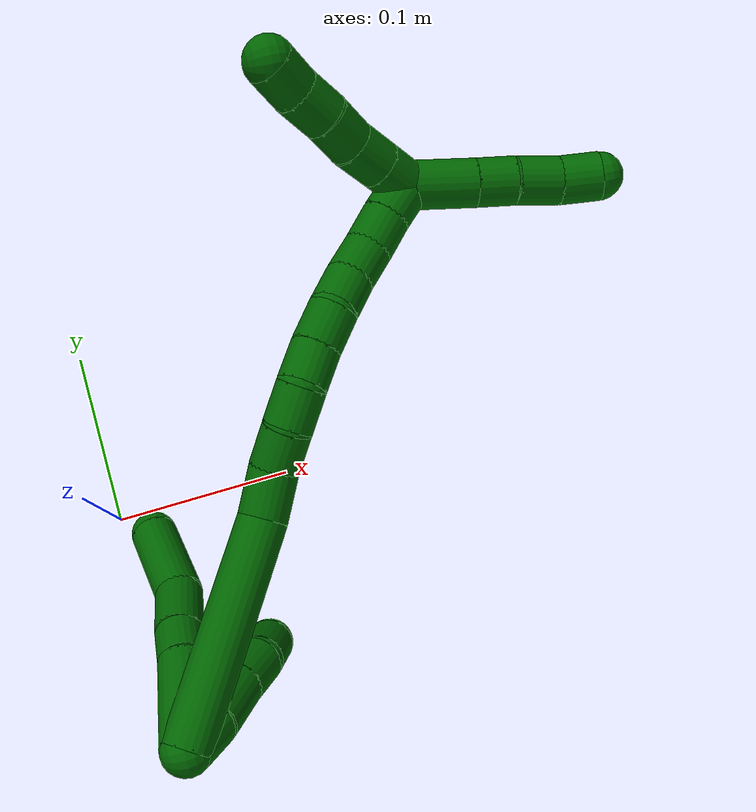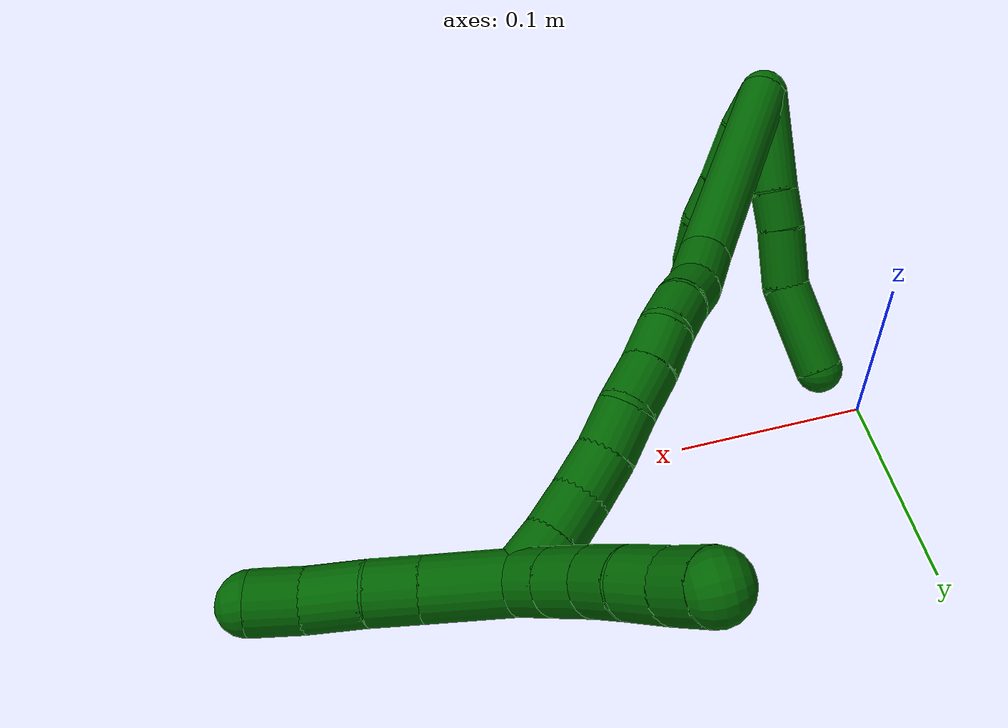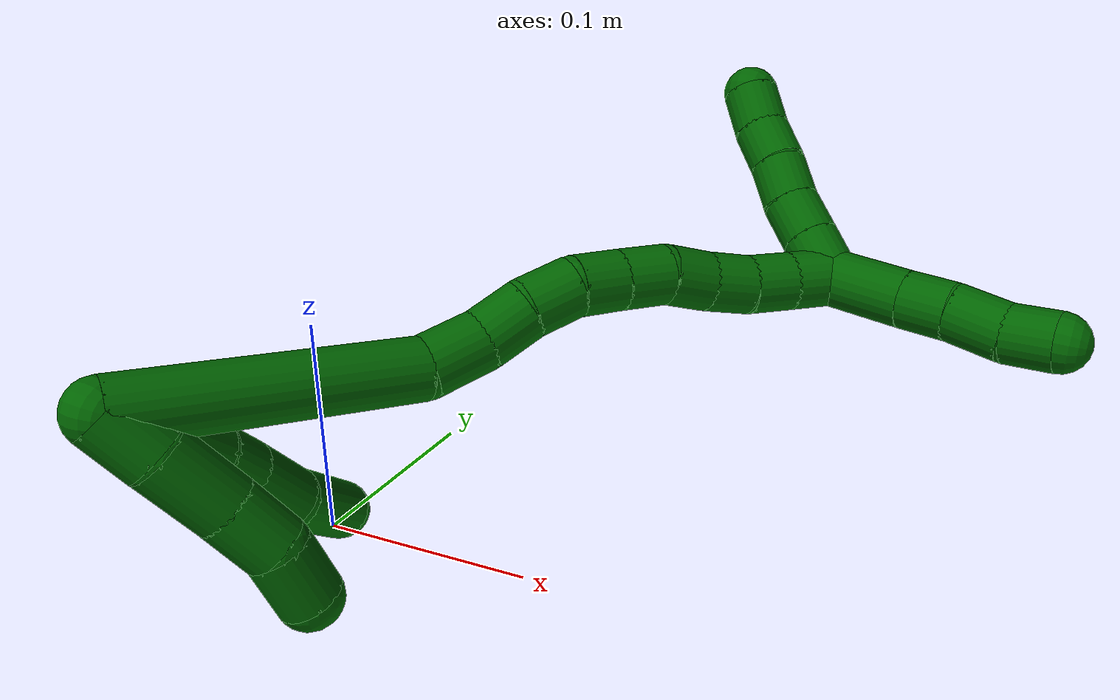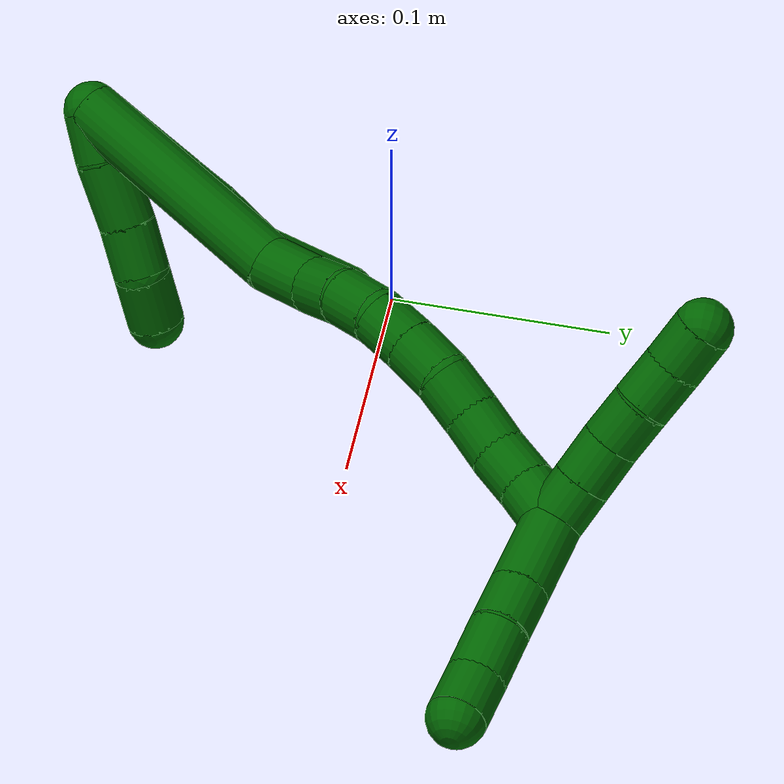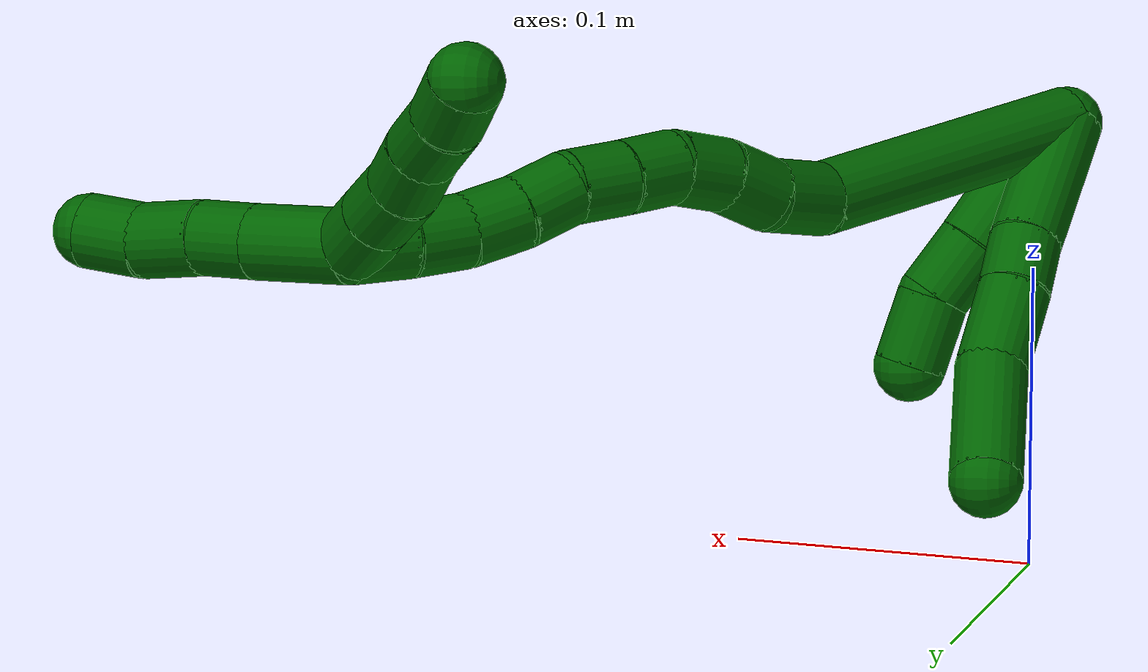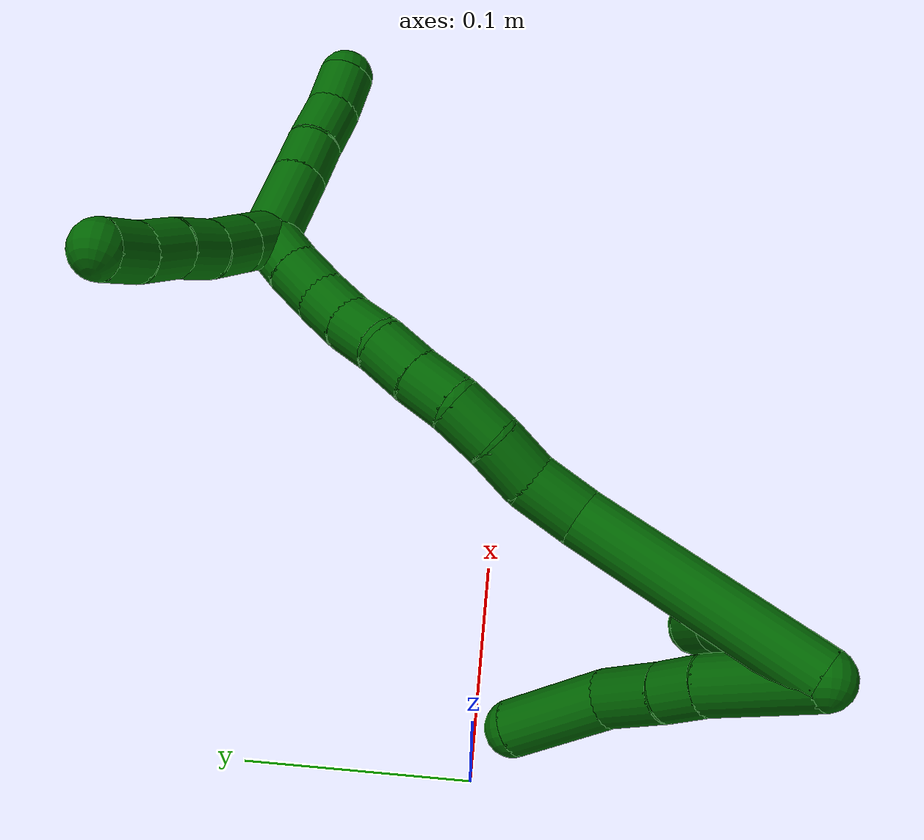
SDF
<sdf version="1.7">
 <world name="default">
  <model name="photoneo_s_sensor">
   <static>1</static>
   <pose>0 0 2 1.57079 1.57079 3.14159</pose>
   <link name="link">
    <inertial><mass>0.1</mass></inertial>
    <sensor name="sensor" type="depth">
     <update_rate>30</update_rate>
     <camera>
      <horizontal_fov>1.22</horizontal_fov>
      <image><width>1920</width><height>1200</height><format>B8G8R8</format></image>
      <clip><near>0.1</near><far>4</far></clip>
      <depth_camera><output>points</output></depth_camera>
     </camera>
     <plugin name="camera_plugin" filename="libgazebo_ros_depth_camera.so">
      <baseline>0.2</baseline>
      <alwaysOn>1</alwaysOn>
      <updateRate>0.0</updateRate>
      <cameraName>camera_ir</cameraName>
      <imageTopicName>/camera/color/image_raw</imageTopicName>
      <cameraInfoTopicName>/camera/color/camera_info</cameraInfoTopicName>
      <depthImageTopicName>/camera/depth/image_raw</depthImageTopicName>
      <depthImageCameraInfoTopicName>/camera/depth/camera_info</depthImageCameraInfoTopicName>
      <pointCloudTopicName>/camera/depth/points</pointCloudTopicName>
      <frameName>fr_optical</frameName>
      <pointCloudCutoff>0.1</pointCloudCutoff>
      <pointCloudCutoffMax>2.0</pointCloudCutoffMax>
      <distortionK1>0</distortionK1>
      <distortionK2>0</distortionK2>
      <distortionK3>0</distortionK3>
      <distortionT1>0</distortionT1>
      <distortionT2>0</distortionT2>
      <CxPrime>0</CxPrime>
      <Cx>0</Cx>
      <Cy>0</Cy>
      <focalLength>0</focalLength>
      <hackBaseline>0</hackBaseline>
     </plugin>
    </sensor>
   </link>
  </model>
  <model name="bin">
   <static>1</static>
   <link name="bottom">
    <collision name="collision-bottom">
     <pose>0 0 -0.01 0 -0 0</pose>
     <geometry><box><size>0.8 0.6 0.02</size></box></geometry>
     <surface>
      <friction><ode><mu>100</mu><mu2>100</mu2></ode></friction>
      <contact><collide_bitmask>65535</collide_bitmask></contact>
     </surface>
    </collision>
   </link>
   <link name="west_wall">
    <collision name="collision-west_wall">
     <pose>-0.41 0 0.1 0 -0 0</pose>
     <geometry><box><size>0.02 0.6 0.2</size></box></geometry>
     <surface>
      <friction><ode><mu>100</mu><mu2>100</mu2></ode></friction>
      <contact><collide_bitmask>65535</collide_bitmask></contact>
     </surface>
    </collision>
   </link>
   <link name="east_wall">
    <collision name="collision-east_wall">
     <pose>0.41 0 0.1 0 -0 0</pose>
     <geometry><box><size>0.02 0.6 0.2</size></box></geometry>
     <surface>
      <friction><ode><mu>100</mu><mu2>100</mu2></ode></friction>
      <contact><collide_bitmask>65535</collide_bitmask></contact>
     </surface>
    </collision>
   </link>
   <link name="south_wall">
    <collision name="collision-south_wall">
     <pose>0 -0.31 0.1 0 -0 0</pose>
     <geometry><box><size>0.8 0.02 0.2</size></box></geometry>
     <surface>
      <friction><ode><mu>100</mu><mu2>100</mu2></ode></friction>
      <contact><collide_bitmask>65535</collide_bitmask></contact>
     </surface>
    </collision>
   </link>
   <link name="north_wall">
    <collision name="collision-north_wall">
     <pose>0 0.31 0.1 0 -0 0</pose>
     <geometry><box><size>0.8 0.02 0.2</size></box></geometry>
     <surface>
      <friction><ode><mu>100</mu><mu2>100</mu2></ode></friction>
      <contact><collide_bitmask>65535</collide_bitmask></contact>
     </surface>
    </collision>
   </link>
  </model>
  <model name="6">
   <static>0</static>
   <link name="6">
    <collision name="collision-cylinder-e_1_2_8">
     <pose>-0.009843 0.023539 -0.002543 -1.67842 -0.393986 0.437498</pose>
     <geometry><cylinder><radius>0.0125</radius><length>0.05128</length></cylinder></geometry>
     <surface>
      <friction><ode><mu>1.16</mu><mu2>1.16</mu2><slip1>0</slip1><slip2>0</slip2></ode></friction>
      <contact><ode><kp>1e+06</kp><kd>1</kd><max_vel>0</max_vel><min_depth>0.001</min_depth></ode></contact>
     </surface>
    </collision>
    <visual name="visual-cylinder-e_1_2_8">
     <pose>-0.009843 0.023539 -0.002543 -1.67842 -0.393986 0.437498</pose>
     <geometry><cylinder><radius>0.0125</radius><length>0.05128</length></cylinder></geometry>
     <material><ambient>0 0.392157 0.003922 1</ambient></material>
    </visual>
    <collision name="collision-cylinder-e_2_8_9">
     <pose>-0.024125 0.056038 -0.005358 -1.6011 -0.459814 0.473447</pose>
     <geometry><cylinder><radius>0.0125</radius><length>0.020007</length></cylinder></geometry>
     <surface>
      <friction><ode><mu>1.16</mu><mu2>1.16</mu2><slip1>0</slip1><slip2>0</slip2></ode></friction>
      <contact><ode><kp>1e+06</kp><kd>1</kd><max_vel>0</max_vel><min_depth>0.001</min_depth></ode></contact>
     </surface>
    </collision>
    <visual name="visual-cylinder-e_2_8_9">
     <pose>-0.024125 0.056038 -0.005358 -1.6011 -0.459814 0.473447</pose>
     <geometry><cylinder><radius>0.0125</radius><length>0.020007</length></cylinder></geometry>
     <material><ambient>0 0.392157 0.003922 1</ambient></material>
    </visual>
    <collision name="collision-cylinder-e_3_9_10">
     <pose>-0.035944 0.078283 -0.007158 -1.68538 -0.504308 0.56265</pose>
     <geometry><cylinder><radius>0.0125</radius><length>0.030547</length></cylinder></geometry>
     <surface>
      <friction><ode><mu>1.16</mu><mu2>1.16</mu2><slip1>0</slip1><slip2>0</slip2></ode></friction>
      <contact><ode><kp>1e+06</kp><kd>1</kd><max_vel>0</max_vel><min_depth>0.001</min_depth></ode></contact>
     </surface>
    </collision>
    <visual name="visual-cylinder-e_3_9_10">
     <pose>-0.035944 0.078283 -0.007158 -1.68538 -0.504308 0.56265</pose>
     <geometry><cylinder><radius>0.0125</radius><length>0.030547</length></cylinder></geometry>
     <material><ambient>0 0.392157 0.003922 1</ambient></material>
    </visual>
    <collision name="collision-cylinder-e_4_10_6">
     <pose>-0.051227 0.114003 -0.004921 -1.40447 -0.334322 0.283624</pose>
     <geometry><cylinder><radius>0.0125</radius><length>0.048165</length></cylinder></geometry>
     <surface>
      <friction><ode><mu>1.16</mu><mu2>1.16</mu2><slip1>0</slip1><slip2>0</slip2></ode></friction>
      <contact><ode><kp>1e+06</kp><kd>1</kd><max_vel>0</max_vel><min_depth>0.001</min_depth></ode></contact>
     </surface>
    </collision>
    <visual name="visual-cylinder-e_4_10_6">
     <pose>-0.051227 0.114003 -0.004921 -1.40447 -0.334322 0.283624</pose>
     <geometry><cylinder><radius>0.0125</radius><length>0.048165</length></cylinder></geometry>
     <material><ambient>0 0.392157 0.003922 1</ambient></material>
    </visual>
    <collision name="collision-cylinder-e_1_2_11">
     <pose>-0.006192 0.006198 -0.006761 -2.39956 -0.593805 1.33282</pose>
     <geometry><cylinder><radius>0.0125</radius><length>0.022133</length></cylinder></geometry>
     <surface>
      <friction><ode><mu>1.16</mu><mu2>1.16</mu2><slip1>0</slip1><slip2>0</slip2></ode></friction>
      <contact><ode><kp>1e+06</kp><kd>1</kd><max_vel>0</max_vel><min_depth>0.001</min_depth></ode></contact>
     </surface>
    </collision>
    <visual name="visual-cylinder-e_1_2_11">
     <pose>-0.006192 0.006198 -0.006761 -2.39956 -0.593805 1.33282</pose>
     <geometry><cylinder><radius>0.0125</radius><length>0.022133</length></cylinder></geometry>
     <material><ambient>0 0.392157 0.003922 1</ambient></material>
    </visual>
    <collision name="collision-cylinder-e_2_11_12">
     <pose>-0.020943 0.022064 -0.021127 -2.23743 -0.607908 1.147</pose>
     <geometry><cylinder><radius>0.0125</radius><length>0.02997</length></cylinder></geometry>
     <surface>
      <friction><ode><mu>1.16</mu><mu2>1.16</mu2><slip1>0</slip1><slip2>0</slip2></ode></friction>
      <contact><ode><kp>1e+06</kp><kd>1</kd><max_vel>0</max_vel><min_depth>0.001</min_depth></ode></contact>
     </surface>
    </collision>
    <visual name="visual-cylinder-e_2_11_12">
     <pose>-0.020943 0.022064 -0.021127 -2.23743 -0.607908 1.147</pose>
     <geometry><cylinder><radius>0.0125</radius><length>0.02997</length></cylinder></geometry>
     <material><ambient>0 0.392157 0.003922 1</ambient></material>
    </visual>
    <collision name="collision-cylinder-e_3_12_13">
     <pose>-0.036213 0.03858 -0.035056 -2.31623 -0.624068 1.26995</pose>
     <geometry><cylinder><radius>0.0125</radius><length>0.022973</length></cylinder></geometry>
     <surface>
      <friction><ode><mu>1.16</mu><mu2>1.16</mu2><slip1>0</slip1><slip2>0</slip2></ode></friction>
      <contact><ode><kp>1e+06</kp><kd>1</kd><max_vel>0</max_vel><min_depth>0.001</min_depth></ode></contact>
     </surface>
    </collision>
    <visual name="visual-cylinder-e_3_12_13">
     <pose>-0.036213 0.03858 -0.035056 -2.31623 -0.624068 1.26995</pose>
     <geometry><cylinder><radius>0.0125</radius><length>0.022973</length></cylinder></geometry>
     <material><ambient>0 0.392157 0.003922 1</ambient></material>
    </visual>
    <collision name="collision-cylinder-e_4_13_5">
     <pose>-0.052639 0.052285 -0.045112 -2.0695 -0.893854 1.3577</pose>
     <geometry><cylinder><radius>0.0125</radius><length>0.024924</length></cylinder></geometry>
     <surface>
      <friction><ode><mu>1.16</mu><mu2>1.16</mu2><slip1>0</slip1><slip2>0</slip2></ode></friction>
      <contact><ode><kp>1e+06</kp><kd>1</kd><max_vel>0</max_vel><min_depth>0.001</min_depth></ode></contact>
     </surface>
    </collision>
    <visual name="visual-cylinder-e_4_13_5">
     <pose>-0.052639 0.052285 -0.045112 -2.0695 -0.893854 1.3577</pose>
     <geometry><cylinder><radius>0.0125</radius><length>0.024924</length></cylinder></geometry>
     <material><ambient>0 0.392157 0.003922 1</ambient></material>
    </visual>
    <collision name="collision-cylinder-e_1_2_14">
     <pose>0.011028 0.045549 -0.029517 -2.14579 0.200452 -0.365864</pose>
     <geometry><cylinder><radius>0.0125</radius><length>0.110773</length></cylinder></geometry>
     <surface>
      <friction><ode><mu>1.16</mu><mu2>1.16</mu2><slip1>0</slip1><slip2>0</slip2></ode></friction>
      <contact><ode><kp>1e+06</kp><kd>1</kd><max_vel>0</max_vel><min_depth>0.001</min_depth></ode></contact>
     </surface>
    </collision>
    <visual name="visual-cylinder-e_1_2_14">
     <pose>0.011028 0.045549 -0.029517 -2.14579 0.200452 -0.365864</pose>
     <geometry><cylinder><radius>0.0125</radius><length>0.110773</length></cylinder></geometry>
     <material><ambient>0 0.392157 0.003922 1</ambient></material>
    </visual>
    <collision name="collision-cylinder-e_2_14_15">
     <pose>0.028265 0.100594 -0.064657 -2.10541 0.512479 -0.861652</pose>
     <geometry><cylinder><radius>0.0125</radius><length>0.025324</length></cylinder></geometry>
     <surface>
      <friction><ode><mu>1.16</mu><mu2>1.16</mu2><slip1>0</slip1><slip2>0</slip2></ode></friction>
      <contact><ode><kp>1e+06</kp><kd>1</kd><max_vel>0</max_vel><min_depth>0.001</min_depth></ode></contact>
     </surface>
    </collision>
    <visual name="visual-cylinder-e_2_14_15">
     <pose>0.028265 0.100594 -0.064657 -2.10541 0.512479 -0.861652</pose>
     <geometry><cylinder><radius>0.0125</radius><length>0.025324</length></cylinder></geometry>
     <material><ambient>0 0.392157 0.003922 1</ambient></material>
    </visual>
    <collision name="collision-cylinder-e_3_15_16">
     <pose>0.041638 0.115953 -0.075467 -2.29501 0.741147 -1.42327</pose>
     <geometry><cylinder><radius>0.0125</radius><length>0.021224</length></cylinder></geometry>
     <surface>
      <friction><ode><mu>1.16</mu><mu2>1.16</mu2><slip1>0</slip1><slip2>0</slip2></ode></friction>
      <contact><ode><kp>1e+06</kp><kd>1</kd><max_vel>0</max_vel><min_depth>0.001</min_depth></ode></contact>
     </surface>
    </collision>
    <visual name="visual-cylinder-e_3_15_16">
     <pose>0.041638 0.115953 -0.075467 -2.29501 0.741147 -1.42327</pose>
     <geometry><cylinder><radius>0.0125</radius><length>0.021224</length></cylinder></geometry>
     <material><ambient>0 0.392157 0.003922 1</ambient></material>
    </visual>
    <collision name="collision-cylinder-e_4_16_17">
     <pose>0.054375 0.128975 -0.08629 -2.23781 0.548899 -1.05126</pose>
     <geometry><cylinder><radius>0.0125</radius><length>0.021358</length></cylinder></geometry>
     <surface>
      <friction><ode><mu>1.16</mu><mu2>1.16</mu2><slip1>0</slip1><slip2>0</slip2></ode></friction>
      <contact><ode><kp>1e+06</kp><kd>1</kd><max_vel>0</max_vel><min_depth>0.001</min_depth></ode></contact>
     </surface>
    </collision>
    <visual name="visual-cylinder-e_4_16_17">
     <pose>0.054375 0.128975 -0.08629 -2.23781 0.548899 -1.05126</pose>
     <geometry><cylinder><radius>0.0125</radius><length>0.021358</length></cylinder></geometry>
     <material><ambient>0 0.392157 0.003922 1</ambient></material>
    </visual>
    <collision name="collision-cylinder-e_5_17_18">
     <pose>0.062471 0.14418 -0.097674 -2.19106 0.249957 -0.478901</pose>
     <geometry><cylinder><radius>0.0125</radius><length>0.020413</length></cylinder></geometry>
     <surface>
      <friction><ode><mu>1.16</mu><mu2>1.16</mu2><slip1>0</slip1><slip2>0</slip2></ode></friction>
      <contact><ode><kp>1e+06</kp><kd>1</kd><max_vel>0</max_vel><min_depth>0.001</min_depth></ode></contact>
     </surface>
    </collision>
    <visual name="visual-cylinder-e_5_17_18">
     <pose>0.062471 0.14418 -0.097674 -2.19106 0.249957 -0.478901</pose>
     <geometry><cylinder><radius>0.0125</radius><length>0.020413</length></cylinder></geometry>
     <material><ambient>0 0.392157 0.003922 1</ambient></material>
    </visual>
    <collision name="collision-cylinder-e_6_18_19">
     <pose>0.067545 0.159977 -0.109942 -2.27022 0.246586 -0.520334</pose>
     <geometry><cylinder><radius>0.0125</radius><length>0.020887</length></cylinder></geometry>
     <surface>
      <friction><ode><mu>1.16</mu><mu2>1.16</mu2><slip1>0</slip1><slip2>0</slip2></ode></friction>
      <contact><ode><kp>1e+06</kp><kd>1</kd><max_vel>0</max_vel><min_depth>0.001</min_depth></ode></contact>
     </surface>
    </collision>
    <visual name="visual-cylinder-e_6_18_19">
     <pose>0.067545 0.159977 -0.109942 -2.27022 0.246586 -0.520334</pose>
     <geometry><cylinder><radius>0.0125</radius><length>0.020887</length></cylinder></geometry>
     <material><ambient>0 0.392157 0.003922 1</ambient></material>
    </visual>
    <collision name="collision-cylinder-e_7_19_20">
     <pose>0.069916 0.175581 -0.122657 -2.23862 -0.017848 0.036805</pose>
     <geometry><cylinder><radius>0.0125</radius><length>0.020009</length></cylinder></geometry>
     <surface>
      <friction><ode><mu>1.16</mu><mu2>1.16</mu2><slip1>0</slip1><slip2>0</slip2></ode></friction>
      <contact><ode><kp>1e+06</kp><kd>1</kd><max_vel>0</max_vel><min_depth>0.001</min_depth></ode></contact>
     </surface>
    </collision>
    <visual name="visual-cylinder-e_7_19_20">
     <pose>0.069916 0.175581 -0.122657 -2.23862 -0.017848 0.036805</pose>
     <geometry><cylinder><radius>0.0125</radius><length>0.020009</length></cylinder></geometry>
     <material><ambient>0 0.392157 0.003922 1</ambient></material>
    </visual>
    <collision name="collision-cylinder-e_8_20_21">
     <pose>0.070424 0.190654 -0.135742 -2.33288 0.06869 -0.160232</pose>
     <geometry><cylinder><radius>0.0125</radius><length>0.020006</length></cylinder></geometry>
     <surface>
      <friction><ode><mu>1.16</mu><mu2>1.16</mu2><slip1>0</slip1><slip2>0</slip2></ode></friction>
      <contact><ode><kp>1e+06</kp><kd>1</kd><max_vel>0</max_vel><min_depth>0.001</min_depth></ode></contact>
     </surface>
    </collision>
    <visual name="visual-cylinder-e_8_20_21">
     <pose>0.070424 0.190654 -0.135742 -2.33288 0.06869 -0.160232</pose>
     <geometry><cylinder><radius>0.0125</radius><length>0.020006</length></cylinder></geometry>
     <material><ambient>0 0.392157 0.003922 1</ambient></material>
    </visual>
    <collision name="collision-cylinder-e_9_21_22">
     <pose>0.073361 0.204817 -0.149468 -2.3484 0.226943 -0.531374</pose>
     <geometry><cylinder><radius>0.0125</radius><length>0.020003</length></cylinder></geometry>
     <surface>
      <friction><ode><mu>1.16</mu><mu2>1.16</mu2><slip1>0</slip1><slip2>0</slip2></ode></friction>
      <contact><ode><kp>1e+06</kp><kd>1</kd><max_vel>0</max_vel><min_depth>0.001</min_depth></ode></contact>
     </surface>
    </collision>
    <visual name="visual-cylinder-e_9_21_22">
     <pose>0.073361 0.204817 -0.149468 -2.3484 0.226943 -0.531374</pose>
     <geometry><cylinder><radius>0.0125</radius><length>0.020003</length></cylinder></geometry>
     <material><ambient>0 0.392157 0.003922 1</ambient></material>
    </visual>
    <collision name="collision-cylinder-e_10_22_1">
     <pose>0.078068 0.218099 -0.163641 -2.42906 0.248236 -0.646933</pose>
     <geometry><cylinder><radius>0.0125</radius><length>0.020003</length></cylinder></geometry>
     <surface>
      <friction><ode><mu>1.16</mu><mu2>1.16</mu2><slip1>0</slip1><slip2>0</slip2></ode></friction>
      <contact><ode><kp>1e+06</kp><kd>1</kd><max_vel>0</max_vel><min_depth>0.001</min_depth></ode></contact>
     </surface>
    </collision>
    <visual name="visual-cylinder-e_10_22_1">
     <pose>0.078068 0.218099 -0.163641 -2.42906 0.248236 -0.646933</pose>
     <geometry><cylinder><radius>0.0125</radius><length>0.020003</length></cylinder></geometry>
     <material><ambient>0 0.392157 0.003922 1</ambient></material>
    </visual>
    <collision name="collision-cylinder-e_1_1_23">
     <pose>0.087586 0.226821 -0.164309 -0.343227 0.78387 -0.143027</pose>
     <geometry><cylinder><radius>0.0125</radius><length>0.02</length></cylinder></geometry>
     <surface>
      <friction><ode><mu>1.16</mu><mu2>1.16</mu2><slip1>0</slip1><slip2>0</slip2></ode></friction>
      <contact><ode><kp>1e+06</kp><kd>1</kd><max_vel>0</max_vel><min_depth>0.001</min_depth></ode></contact>
     </surface>
    </collision>
    <visual name="visual-cylinder-e_1_1_23">
     <pose>0.087586 0.226821 -0.164309 -0.343227 0.78387 -0.143027</pose>
     <geometry><cylinder><radius>0.0125</radius><length>0.02</length></cylinder></geometry>
     <material><ambient>0 0.392157 0.003922 1</ambient></material>
    </visual>
    <collision name="collision-cylinder-e_2_23_24">
     <pose>0.10169 0.231576 -0.15095 -0.340792 0.781601 -0.141541</pose>
     <geometry><cylinder><radius>0.0125</radius><length>0.02</length></cylinder></geometry>
     <surface>
      <friction><ode><mu>1.16</mu><mu2>1.16</mu2><slip1>0</slip1><slip2>0</slip2></ode></friction>
      <contact><ode><kp>1e+06</kp><kd>1</kd><max_vel>0</max_vel><min_depth>0.001</min_depth></ode></contact>
     </surface>
    </collision>
    <visual name="visual-cylinder-e_2_23_24">
     <pose>0.10169 0.231576 -0.15095 -0.340792 0.781601 -0.141541</pose>
     <geometry><cylinder><radius>0.0125</radius><length>0.02</length></cylinder></geometry>
     <material><ambient>0 0.392157 0.003922 1</ambient></material>
    </visual>
    <collision name="collision-cylinder-e_3_24_25">
     <pose>0.116706 0.236438 -0.13876 -0.424994 0.92262 -0.213678</pose>
     <geometry><cylinder><radius>0.0125</radius><length>0.02</length></cylinder></geometry>
     <surface>
      <friction><ode><mu>1.16</mu><mu2>1.16</mu2><slip1>0</slip1><slip2>0</slip2></ode></friction>
      <contact><ode><kp>1e+06</kp><kd>1</kd><max_vel>0</max_vel><min_depth>0.001</min_depth></ode></contact>
     </surface>
    </collision>
    <visual name="visual-cylinder-e_3_24_25">
     <pose>0.116706 0.236438 -0.13876 -0.424994 0.92262 -0.213678</pose>
     <geometry><cylinder><radius>0.0125</radius><length>0.02</length></cylinder></geometry>
     <material><ambient>0 0.392157 0.003922 1</ambient></material>
    </visual>
    <collision name="collision-cylinder-e_4_25_26">
     <pose>0.131902 0.241776 -0.126959 -0.424567 0.807245 -0.183576</pose>
     <geometry><cylinder><radius>0.0125</radius><length>0.02</length></cylinder></geometry>
     <surface>
      <friction><ode><mu>1.16</mu><mu2>1.16</mu2><slip1>0</slip1><slip2>0</slip2></ode></friction>
      <contact><ode><kp>1e+06</kp><kd>1</kd><max_vel>0</max_vel><min_depth>0.001</min_depth></ode></contact>
     </surface>
    </collision>
    <visual name="visual-cylinder-e_4_25_26">
     <pose>0.131902 0.241776 -0.126959 -0.424567 0.807245 -0.183576</pose>
     <geometry><cylinder><radius>0.0125</radius><length>0.02</length></cylinder></geometry>
     <material><ambient>0 0.392157 0.003922 1</ambient></material>
    </visual>
    <collision name="collision-cylinder-e_5_26_4">
     <pose>0.147322 0.246909 -0.115404 -0.410259 0.960709 -0.215976</pose>
     <geometry><cylinder><radius>0.0125</radius><length>0.02</length></cylinder></geometry>
     <surface>
      <friction><ode><mu>1.16</mu><mu2>1.16</mu2><slip1>0</slip1><slip2>0</slip2></ode></friction>
      <contact><ode><kp>1e+06</kp><kd>1</kd><max_vel>0</max_vel><min_depth>0.001</min_depth></ode></contact>
     </surface>
    </collision>
    <visual name="visual-cylinder-e_5_26_4">
     <pose>0.147322 0.246909 -0.115404 -0.410259 0.960709 -0.215976</pose>
     <geometry><cylinder><radius>0.0125</radius><length>0.02</length></cylinder></geometry>
     <material><ambient>0 0.392157 0.003922 1</ambient></material>
    </visual>
    <collision name="collision-cylinder-e_1_1_27">
     <pose>0.079344 0.22136 -0.18835 2.96625 -0.066842 -0.726957</pose>
     <geometry><cylinder><radius>0.0125</radius><length>0.035366</length></cylinder></geometry>
     <surface>
      <friction><ode><mu>1.16</mu><mu2>1.16</mu2><slip1>0</slip1><slip2>0</slip2></ode></friction>
      <contact><ode><kp>1e+06</kp><kd>1</kd><max_vel>0</max_vel><min_depth>0.001</min_depth></ode></contact>
     </surface>
    </collision>
    <visual name="visual-cylinder-e_1_1_27">
     <pose>0.079344 0.22136 -0.18835 2.96625 -0.066842 -0.726957</pose>
     <geometry><cylinder><radius>0.0125</radius><length>0.035366</length></cylinder></geometry>
     <material><ambient>0 0.392157 0.003922 1</ambient></material>
    </visual>
    <collision name="collision-cylinder-e_2_27_28">
     <pose>0.077765 0.216506 -0.215703 2.96551 -0.039292 -0.438041</pose>
     <geometry><cylinder><radius>0.0125</radius><length>0.020288</length></cylinder></geometry>
     <surface>
      <friction><ode><mu>1.16</mu><mu2>1.16</mu2><slip1>0</slip1><slip2>0</slip2></ode></friction>
      <contact><ode><kp>1e+06</kp><kd>1</kd><max_vel>0</max_vel><min_depth>0.001</min_depth></ode></contact>
     </surface>
    </collision>
    <visual name="visual-cylinder-e_2_27_28">
     <pose>0.077765 0.216506 -0.215703 2.96551 -0.039292 -0.438041</pose>
     <geometry><cylinder><radius>0.0125</radius><length>0.020288</length></cylinder></geometry>
     <material><ambient>0 0.392157 0.003922 1</ambient></material>
    </visual>
    <collision name="collision-cylinder-e_3_28_29">
     <pose>0.07561 0.212974 -0.237185 2.99004 -0.149823 -1.55927</pose>
     <geometry><cylinder><radius>0.0125</radius><length>0.023536</length></cylinder></geometry>
     <surface>
      <friction><ode><mu>1.16</mu><mu2>1.16</mu2><slip1>0</slip1><slip2>0</slip2></ode></friction>
      <contact><ode><kp>1e+06</kp><kd>1</kd><max_vel>0</max_vel><min_depth>0.001</min_depth></ode></contact>
     </surface>
    </collision>
    <visual name="visual-cylinder-e_3_28_29">
     <pose>0.07561 0.212974 -0.237185 2.99004 -0.149823 -1.55927</pose>
     <geometry><cylinder><radius>0.0125</radius><length>0.023536</length></cylinder></geometry>
     <material><ambient>0 0.392157 0.003922 1</ambient></material>
    </visual>
    <collision name="collision-cylinder-e_4_29_3">
     <pose>0.07444 0.209291 -0.258896 2.9551 0.056424 0.586138</pose>
     <geometry><cylinder><radius>0.0125</radius><length>0.02081</length></cylinder></geometry>
     <surface>
      <friction><ode><mu>1.16</mu><mu2>1.16</mu2><slip1>0</slip1><slip2>0</slip2></ode></friction>
      <contact><ode><kp>1e+06</kp><kd>1</kd><max_vel>0</max_vel><min_depth>0.001</min_depth></ode></contact>
     </surface>
    </collision>
    <visual name="visual-cylinder-e_4_29_3">
     <pose>0.07444 0.209291 -0.258896 2.9551 0.056424 0.586138</pose>
     <geometry><cylinder><radius>0.0125</radius><length>0.02081</length></cylinder></geometry>
     <material><ambient>0 0.392157 0.003922 1</ambient></material>
    </visual>
    <collision name="collision-sphere-3">
     <pose>0.075027 0.207365 -0.269104 0 -0 0</pose>
     <geometry><sphere><radius>0.0125</radius></sphere></geometry>
     <surface>
      <friction><ode><mu>1.16</mu><mu2>1.16</mu2><slip1>0</slip1><slip2>0</slip2></ode></friction>
      <contact><ode><kp>1e+06</kp><kd>1</kd><max_vel>0</max_vel><min_depth>0.001</min_depth></ode></contact>
     </surface>
    </collision>
    <visual name="visual-sphere-3">
     <pose>0.075027 0.207365 -0.269104 0 -0 0</pose>
     <geometry><sphere><radius>0.0125</radius></sphere></geometry>
     <material><ambient>0 0.392157 0.003922 1</ambient></material>
    </visual>
    <collision name="collision-sphere-29">
     <pose>0.073853 0.211217 -0.248688 0 -0 0</pose>
     <geometry><sphere><radius>0.0125</radius></sphere></geometry>
     <surface>
      <friction><ode><mu>1.16</mu><mu2>1.16</mu2><slip1>0</slip1><slip2>0</slip2></ode></friction>
      <contact><ode><kp>1e+06</kp><kd>1</kd><max_vel>0</max_vel><min_depth>0.001</min_depth></ode></contact>
     </surface>
    </collision>
    <visual name="visual-sphere-29">
     <pose>0.073853 0.211217 -0.248688 0 -0 0</pose>
     <geometry><sphere><radius>0.0125</radius></sphere></geometry>
     <material><ambient>0 0.392157 0.003922 1</ambient></material>
    </visual>
    <collision name="collision-sphere-28">
     <pose>0.077366 0.214731 -0.225682 0 -0 0</pose>
     <geometry><sphere><radius>0.0125</radius></sphere></geometry>
     <surface>
      <friction><ode><mu>1.16</mu><mu2>1.16</mu2><slip1>0</slip1><slip2>0</slip2></ode></friction>
      <contact><ode><kp>1e+06</kp><kd>1</kd><max_vel>0</max_vel><min_depth>0.001</min_depth></ode></contact>
     </surface>
    </collision>
    <visual name="visual-sphere-28">
     <pose>0.077366 0.214731 -0.225682 0 -0 0</pose>
     <geometry><sphere><radius>0.0125</radius></sphere></geometry>
     <material><ambient>0 0.392157 0.003922 1</ambient></material>
    </visual>
    <collision name="collision-sphere-27">
     <pose>0.078163 0.218282 -0.205723 0 -0 0</pose>
     <geometry><sphere><radius>0.0125</radius></sphere></geometry>
     <surface>
      <friction><ode><mu>1.16</mu><mu2>1.16</mu2><slip1>0</slip1><slip2>0</slip2></ode></friction>
      <contact><ode><kp>1e+06</kp><kd>1</kd><max_vel>0</max_vel><min_depth>0.001</min_depth></ode></contact>
     </surface>
    </collision>
    <visual name="visual-sphere-27">
     <pose>0.078163 0.218282 -0.205723 0 -0 0</pose>
     <geometry><sphere><radius>0.0125</radius></sphere></geometry>
     <material><ambient>0 0.392157 0.003922 1</ambient></material>
    </visual>
    <collision name="collision-sphere-4">
     <pose>0.155518 0.249194 -0.11015 0 -0 0</pose>
     <geometry><sphere><radius>0.0125</radius></sphere></geometry>
     <surface>
      <friction><ode><mu>1.16</mu><mu2>1.16</mu2><slip1>0</slip1><slip2>0</slip2></ode></friction>
      <contact><ode><kp>1e+06</kp><kd>1</kd><max_vel>0</max_vel><min_depth>0.001</min_depth></ode></contact>
     </surface>
    </collision>
    <visual name="visual-sphere-4">
     <pose>0.155518 0.249194 -0.11015 0 -0 0</pose>
     <geometry><sphere><radius>0.0125</radius></sphere></geometry>
     <material><ambient>0 0.392157 0.003922 1</ambient></material>
    </visual>
    <collision name="collision-sphere-26">
     <pose>0.139126 0.244624 -0.120658 0 -0 0</pose>
     <geometry><sphere><radius>0.0125</radius></sphere></geometry>
     <surface>
      <friction><ode><mu>1.16</mu><mu2>1.16</mu2><slip1>0</slip1><slip2>0</slip2></ode></friction>
      <contact><ode><kp>1e+06</kp><kd>1</kd><max_vel>0</max_vel><min_depth>0.001</min_depth></ode></contact>
     </surface>
    </collision>
    <visual name="visual-sphere-26">
     <pose>0.139126 0.244624 -0.120658 0 -0 0</pose>
     <geometry><sphere><radius>0.0125</radius></sphere></geometry>
     <material><ambient>0 0.392157 0.003922 1</ambient></material>
    </visual>
    <collision name="collision-sphere-25">
     <pose>0.124678 0.238927 -0.13326 0 -0 0</pose>
     <geometry><sphere><radius>0.0125</radius></sphere></geometry>
     <surface>
      <friction><ode><mu>1.16</mu><mu2>1.16</mu2><slip1>0</slip1><slip2>0</slip2></ode></friction>
      <contact><ode><kp>1e+06</kp><kd>1</kd><max_vel>0</max_vel><min_depth>0.001</min_depth></ode></contact>
     </surface>
    </collision>
    <visual name="visual-sphere-25">
     <pose>0.124678 0.238927 -0.13326 0 -0 0</pose>
     <geometry><sphere><radius>0.0125</radius></sphere></geometry>
     <material><ambient>0 0.392157 0.003922 1</ambient></material>
    </visual>
    <collision name="collision-sphere-24">
     <pose>0.108734 0.233949 -0.14426 0 -0 0</pose>
     <geometry><sphere><radius>0.0125</radius></sphere></geometry>
     <surface>
      <friction><ode><mu>1.16</mu><mu2>1.16</mu2><slip1>0</slip1><slip2>0</slip2></ode></friction>
      <contact><ode><kp>1e+06</kp><kd>1</kd><max_vel>0</max_vel><min_depth>0.001</min_depth></ode></contact>
     </surface>
    </collision>
    <visual name="visual-sphere-24">
     <pose>0.108734 0.233949 -0.14426 0 -0 0</pose>
     <geometry><sphere><radius>0.0125</radius></sphere></geometry>
     <material><ambient>0 0.392157 0.003922 1</ambient></material>
    </visual>
    <collision name="collision-sphere-23">
     <pose>0.094646 0.229204 -0.15764 0 -0 0</pose>
     <geometry><sphere><radius>0.0125</radius></sphere></geometry>
     <surface>
      <friction><ode><mu>1.16</mu><mu2>1.16</mu2><slip1>0</slip1><slip2>0</slip2></ode></friction>
      <contact><ode><kp>1e+06</kp><kd>1</kd><max_vel>0</max_vel><min_depth>0.001</min_depth></ode></contact>
     </surface>
    </collision>
    <visual name="visual-sphere-23">
     <pose>0.094646 0.229204 -0.15764 0 -0 0</pose>
     <geometry><sphere><radius>0.0125</radius></sphere></geometry>
     <material><ambient>0 0.392157 0.003922 1</ambient></material>
    </visual>
    <collision name="collision-sphere-1">
     <pose>0.080526 0.224437 -0.170977 0 -0 0</pose>
     <geometry><sphere><radius>0.0125</radius></sphere></geometry>
     <surface>
      <friction><ode><mu>1.16</mu><mu2>1.16</mu2><slip1>0</slip1><slip2>0</slip2></ode></friction>
      <contact><ode><kp>1e+06</kp><kd>1</kd><max_vel>0</max_vel><min_depth>0.001</min_depth></ode></contact>
     </surface>
    </collision>
    <visual name="visual-sphere-1">
     <pose>0.080526 0.224437 -0.170977 0 -0 0</pose>
     <geometry><sphere><radius>0.0125</radius></sphere></geometry>
     <material><ambient>0 0.392157 0.003922 1</ambient></material>
    </visual>
    <collision name="collision-sphere-22">
     <pose>0.075611 0.211761 -0.156305 0 -0 0</pose>
     <geometry><sphere><radius>0.0125</radius></sphere></geometry>
     <surface>
      <friction><ode><mu>1.16</mu><mu2>1.16</mu2><slip1>0</slip1><slip2>0</slip2></ode></friction>
      <contact><ode><kp>1e+06</kp><kd>1</kd><max_vel>0</max_vel><min_depth>0.001</min_depth></ode></contact>
     </surface>
    </collision>
    <visual name="visual-sphere-22">
     <pose>0.075611 0.211761 -0.156305 0 -0 0</pose>
     <geometry><sphere><radius>0.0125</radius></sphere></geometry>
     <material><ambient>0 0.392157 0.003922 1</ambient></material>
    </visual>
    <collision name="collision-sphere-21">
     <pose>0.07111 0.197873 -0.142632 0 -0 0</pose>
     <geometry><sphere><radius>0.0125</radius></sphere></geometry>
     <surface>
      <friction><ode><mu>1.16</mu><mu2>1.16</mu2><slip1>0</slip1><slip2>0</slip2></ode></friction>
      <contact><ode><kp>1e+06</kp><kd>1</kd><max_vel>0</max_vel><min_depth>0.001</min_depth></ode></contact>
     </surface>
    </collision>
    <visual name="visual-sphere-21">
     <pose>0.07111 0.197873 -0.142632 0 -0 0</pose>
     <geometry><sphere><radius>0.0125</radius></sphere></geometry>
     <material><ambient>0 0.392157 0.003922 1</ambient></material>
    </visual>
    <collision name="collision-sphere-11">
     <pose>-0.012384 0.012397 -0.013522 0 -0 0</pose>
     <geometry><sphere><radius>0.0125</radius></sphere></geometry>
     <surface>
      <friction><ode><mu>1.16</mu><mu2>1.16</mu2><slip1>0</slip1><slip2>0</slip2></ode></friction>
      <contact><ode><kp>1e+06</kp><kd>1</kd><max_vel>0</max_vel><min_depth>0.001</min_depth></ode></contact>
     </surface>
    </collision>
    <visual name="visual-sphere-11">
     <pose>-0.012384 0.012397 -0.013522 0 -0 0</pose>
     <geometry><sphere><radius>0.0125</radius></sphere></geometry>
     <material><ambient>0 0.392157 0.003922 1</ambient></material>
    </visual>
    <collision name="collision-sphere-6">
     <pose>-0.059129 0.136438 -0.001155 0 -0 0</pose>
     <geometry><sphere><radius>0.0125</radius></sphere></geometry>
     <surface>
      <friction><ode><mu>1.16</mu><mu2>1.16</mu2><slip1>0</slip1><slip2>0</slip2></ode></friction>
      <contact><ode><kp>1e+06</kp><kd>1</kd><max_vel>0</max_vel><min_depth>0.001</min_depth></ode></contact>
     </surface>
    </collision>
    <visual name="visual-sphere-6">
     <pose>-0.059129 0.136438 -0.001155 0 -0 0</pose>
     <geometry><sphere><radius>0.0125</radius></sphere></geometry>
     <material><ambient>0 0.392157 0.003922 1</ambient></material>
    </visual>
    <collision name="collision-sphere-10">
     <pose>-0.043324 0.091568 -0.008687 0 -0 0</pose>
     <geometry><sphere><radius>0.0125</radius></sphere></geometry>
     <surface>
      <friction><ode><mu>1.16</mu><mu2>1.16</mu2><slip1>0</slip1><slip2>0</slip2></ode></friction>
      <contact><ode><kp>1e+06</kp><kd>1</kd><max_vel>0</max_vel><min_depth>0.001</min_depth></ode></contact>
     </surface>
    </collision>
    <visual name="visual-sphere-10">
     <pose>-0.043324 0.091568 -0.008687 0 -0 0</pose>
     <geometry><sphere><radius>0.0125</radius></sphere></geometry>
     <material><ambient>0 0.392157 0.003922 1</ambient></material>
    </visual>
    <collision name="collision-sphere-9">
     <pose>-0.028564 0.064999 -0.00563 0 -0 0</pose>
     <geometry><sphere><radius>0.0125</radius></sphere></geometry>
     <surface>
      <friction><ode><mu>1.16</mu><mu2>1.16</mu2><slip1>0</slip1><slip2>0</slip2></ode></friction>
      <contact><ode><kp>1e+06</kp><kd>1</kd><max_vel>0</max_vel><min_depth>0.001</min_depth></ode></contact>
     </surface>
    </collision>
    <visual name="visual-sphere-9">
     <pose>-0.028564 0.064999 -0.00563 0 -0 0</pose>
     <geometry><sphere><radius>0.0125</radius></sphere></geometry>
     <material><ambient>0 0.392157 0.003922 1</ambient></material>
    </visual>
    <collision name="collision-sphere-2">
     <geometry><sphere><radius>0.0125</radius></sphere></geometry>
     <surface>
      <friction><ode><mu>1.16</mu><mu2>1.16</mu2><slip1>0</slip1><slip2>0</slip2></ode></friction>
      <contact><ode><kp>1e+06</kp><kd>1</kd><max_vel>0</max_vel><min_depth>0.001</min_depth></ode></contact>
     </surface>
    </collision>
    <visual name="visual-sphere-2">
     <geometry><sphere><radius>0.0125</radius></sphere></geometry>
     <material><ambient>0 0.392157 0.003922 1</ambient></material>
    </visual>
    <collision name="collision-sphere-19">
     <pose>0.070094 0.167727 -0.116463 0 -0 0</pose>
     <geometry><sphere><radius>0.0125</radius></sphere></geometry>
     <surface>
      <friction><ode><mu>1.16</mu><mu2>1.16</mu2><slip1>0</slip1><slip2>0</slip2></ode></friction>
      <contact><ode><kp>1e+06</kp><kd>1</kd><max_vel>0</max_vel><min_depth>0.001</min_depth></ode></contact>
     </surface>
    </collision>
    <visual name="visual-sphere-19">
     <pose>0.070094 0.167727 -0.116463 0 -0 0</pose>
     <geometry><sphere><radius>0.0125</radius></sphere></geometry>
     <material><ambient>0 0.392157 0.003922 1</ambient></material>
    </visual>
    <collision name="collision-sphere-8">
     <pose>-0.019685 0.047078 -0.005086 0 -0 0</pose>
     <geometry><sphere><radius>0.0125</radius></sphere></geometry>
     <surface>
      <friction><ode><mu>1.16</mu><mu2>1.16</mu2><slip1>0</slip1><slip2>0</slip2></ode></friction>
      <contact><ode><kp>1e+06</kp><kd>1</kd><max_vel>0</max_vel><min_depth>0.001</min_depth></ode></contact>
     </surface>
    </collision>
    <visual name="visual-sphere-8">
     <pose>-0.019685 0.047078 -0.005086 0 -0 0</pose>
     <geometry><sphere><radius>0.0125</radius></sphere></geometry>
     <material><ambient>0 0.392157 0.003922 1</ambient></material>
    </visual>
    <collision name="collision-sphere-12">
     <pose>-0.029501 0.031731 -0.028733 0 -0 0</pose>
     <geometry><sphere><radius>0.0125</radius></sphere></geometry>
     <surface>
      <friction><ode><mu>1.16</mu><mu2>1.16</mu2><slip1>0</slip1><slip2>0</slip2></ode></friction>
      <contact><ode><kp>1e+06</kp><kd>1</kd><max_vel>0</max_vel><min_depth>0.001</min_depth></ode></contact>
     </surface>
    </collision>
    <visual name="visual-sphere-12">
     <pose>-0.029501 0.031731 -0.028733 0 -0 0</pose>
     <geometry><sphere><radius>0.0125</radius></sphere></geometry>
     <material><ambient>0 0.392157 0.003922 1</ambient></material>
    </visual>
    <collision name="collision-sphere-13">
     <pose>-0.042925 0.045429 -0.041378 0 -0 0</pose>
     <geometry><sphere><radius>0.0125</radius></sphere></geometry>
     <surface>
      <friction><ode><mu>1.16</mu><mu2>1.16</mu2><slip1>0</slip1><slip2>0</slip2></ode></friction>
      <contact><ode><kp>1e+06</kp><kd>1</kd><max_vel>0</max_vel><min_depth>0.001</min_depth></ode></contact>
     </surface>
    </collision>
    <visual name="visual-sphere-13">
     <pose>-0.042925 0.045429 -0.041378 0 -0 0</pose>
     <geometry><sphere><radius>0.0125</radius></sphere></geometry>
     <material><ambient>0 0.392157 0.003922 1</ambient></material>
    </visual>
    <collision name="collision-sphere-5">
     <pose>-0.062353 0.05914 -0.048846 0 -0 0</pose>
     <geometry><sphere><radius>0.0125</radius></sphere></geometry>
     <surface>
      <friction><ode><mu>1.16</mu><mu2>1.16</mu2><slip1>0</slip1><slip2>0</slip2></ode></friction>
      <contact><ode><kp>1e+06</kp><kd>1</kd><max_vel>0</max_vel><min_depth>0.001</min_depth></ode></contact>
     </surface>
    </collision>
    <visual name="visual-sphere-5">
     <pose>-0.062353 0.05914 -0.048846 0 -0 0</pose>
     <geometry><sphere><radius>0.0125</radius></sphere></geometry>
     <material><ambient>0 0.392157 0.003922 1</ambient></material>
    </visual>
    <collision name="collision-sphere-14">
     <pose>0.022056 0.091099 -0.059035 0 -0 0</pose>
     <geometry><sphere><radius>0.0125</radius></sphere></geometry>
     <surface>
      <friction><ode><mu>1.16</mu><mu2>1.16</mu2><slip1>0</slip1><slip2>0</slip2></ode></friction>
      <contact><ode><kp>1e+06</kp><kd>1</kd><max_vel>0</max_vel><min_depth>0.001</min_depth></ode></contact>
     </surface>
    </collision>
    <visual name="visual-sphere-14">
     <pose>0.022056 0.091099 -0.059035 0 -0 0</pose>
     <geometry><sphere><radius>0.0125</radius></sphere></geometry>
     <material><ambient>0 0.392157 0.003922 1</ambient></material>
    </visual>
    <collision name="collision-sphere-15">
     <pose>0.034473 0.11009 -0.07028 0 -0 0</pose>
     <geometry><sphere><radius>0.0125</radius></sphere></geometry>
     <surface>
      <friction><ode><mu>1.16</mu><mu2>1.16</mu2><slip1>0</slip1><slip2>0</slip2></ode></friction>
      <contact><ode><kp>1e+06</kp><kd>1</kd><max_vel>0</max_vel><min_depth>0.001</min_depth></ode></contact>
     </surface>
    </collision>
    <visual name="visual-sphere-15">
     <pose>0.034473 0.11009 -0.07028 0 -0 0</pose>
     <geometry><sphere><radius>0.0125</radius></sphere></geometry>
     <material><ambient>0 0.392157 0.003922 1</ambient></material>
    </visual>
    <collision name="collision-sphere-16">
     <pose>0.048803 0.121817 -0.080654 0 -0 0</pose>
     <geometry><sphere><radius>0.0125</radius></sphere></geometry>
     <surface>
      <friction><ode><mu>1.16</mu><mu2>1.16</mu2><slip1>0</slip1><slip2>0</slip2></ode></friction>
      <contact><ode><kp>1e+06</kp><kd>1</kd><max_vel>0</max_vel><min_depth>0.001</min_depth></ode></contact>
     </surface>
    </collision>
    <visual name="visual-sphere-16">
     <pose>0.048803 0.121817 -0.080654 0 -0 0</pose>
     <geometry><sphere><radius>0.0125</radius></sphere></geometry>
     <material><ambient>0 0.392157 0.003922 1</ambient></material>
    </visual>
    <collision name="collision-sphere-17">
     <pose>0.059946 0.136133 -0.091926 0 -0 0</pose>
     <geometry><sphere><radius>0.0125</radius></sphere></geometry>
     <surface>
      <friction><ode><mu>1.16</mu><mu2>1.16</mu2><slip1>0</slip1><slip2>0</slip2></ode></friction>
      <contact><ode><kp>1e+06</kp><kd>1</kd><max_vel>0</max_vel><min_depth>0.001</min_depth></ode></contact>
     </surface>
    </collision>
    <visual name="visual-sphere-17">
     <pose>0.059946 0.136133 -0.091926 0 -0 0</pose>
     <geometry><sphere><radius>0.0125</radius></sphere></geometry>
     <material><ambient>0 0.392157 0.003922 1</ambient></material>
    </visual>
    <collision name="collision-sphere-18">
     <pose>0.064996 0.152227 -0.103422 0 -0 0</pose>
     <geometry><sphere><radius>0.0125</radius></sphere></geometry>
     <surface>
      <friction><ode><mu>1.16</mu><mu2>1.16</mu2><slip1>0</slip1><slip2>0</slip2></ode></friction>
      <contact><ode><kp>1e+06</kp><kd>1</kd><max_vel>0</max_vel><min_depth>0.001</min_depth></ode></contact>
     </surface>
    </collision>
    <visual name="visual-sphere-18">
     <pose>0.064996 0.152227 -0.103422 0 -0 0</pose>
     <geometry><sphere><radius>0.0125</radius></sphere></geometry>
     <material><ambient>0 0.392157 0.003922 1</ambient></material>
    </visual>
    <collision name="collision-sphere-20">
     <pose>0.069737 0.183435 -0.128852 0 -0 0</pose>
     <geometry><sphere><radius>0.0125</radius></sphere></geometry>
     <surface>
      <friction><ode><mu>1.16</mu><mu2>1.16</mu2><slip1>0</slip1><slip2>0</slip2></ode></friction>
      <contact><ode><kp>1e+06</kp><kd>1</kd><max_vel>0</max_vel><min_depth>0.001</min_depth></ode></contact>
     </surface>
    </collision>
    <visual name="visual-sphere-20">
     <pose>0.069737 0.183435 -0.128852 0 -0 0</pose>
     <geometry><sphere><radius>0.0125</radius></sphere></geometry>
     <material><ambient>0 0.392157 0.003922 1</ambient></material>
    </visual>
    <inertial>
     <pose>0.032614 0.124451 -0.084554 0 -0 0</pose>
     <mass>0.75</mass>
     <inertia>
      <ixx>0.000121</ixx>
      <ixy>0</ixy>
      <ixz>0</ixz>
      <iyy>-5.3e-05</iyy>
      <iyz>0</iyz>
      <izz>-0.000176</izz>
     </inertia>
    </inertial>
   </link>
   <pose>0.021829 -0.127799 0.121177 -1.36935 -1.24803 1.35474</pose>
  </model>
 </world>
</sdf>
